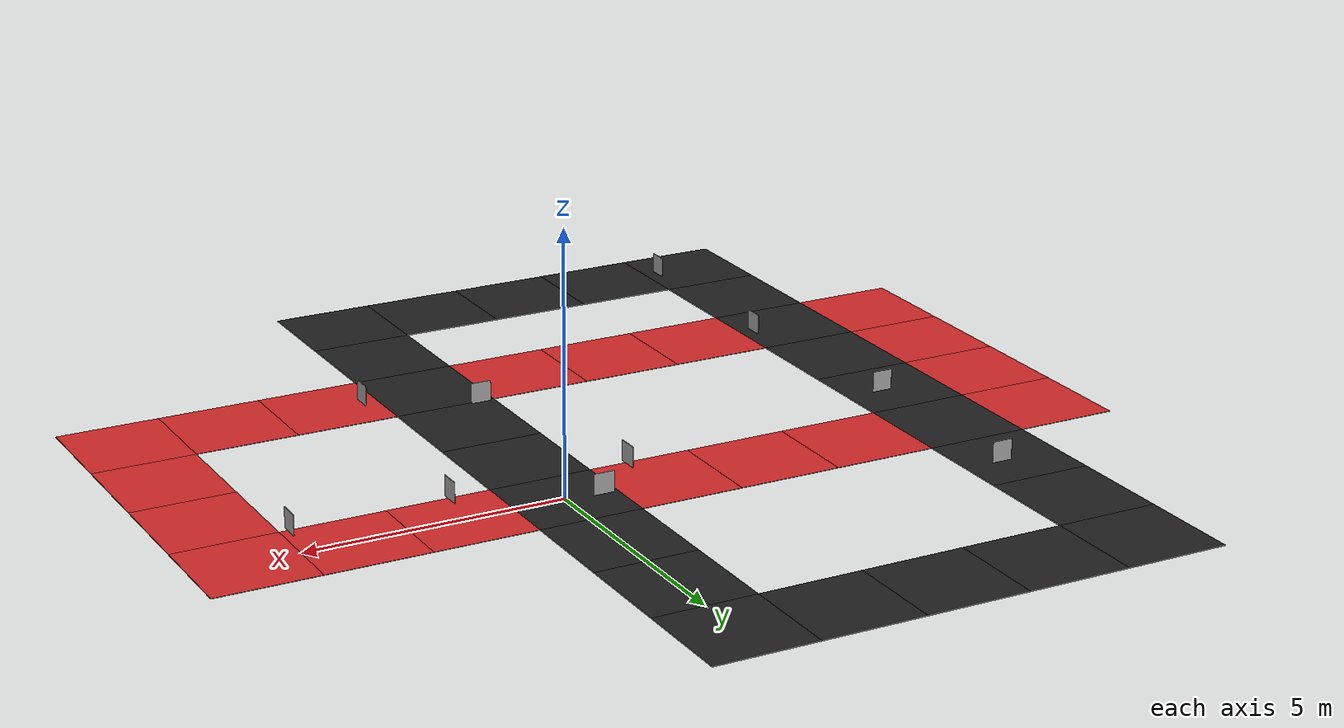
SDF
<sdf version="1.6">
 <world name="default">
  <light name="sun" type="directional">
   <pose>0 0 10 0 -0 0</pose>
   <diffuse>0.8 0.8 0.8 1</diffuse>
   <specular>0.2 0.2 0.2 1</specular>
   <attenuation>
    <range>1000</range>
    <constant>0.9</constant>
    <linear>0.01</linear>
    <quadratic>0.001</quadratic>
   </attenuation>
   <direction>-0.5 0.1 -0.9</direction>
  </light>
  <gravity>0 0 -9.8</gravity>
  <magnetic_field>6e-06 2.3e-05 -4.2e-05</magnetic_field>
  <atmosphere type="adiabatic"/>
  <physics name="default_physics" default="0" type="ode">
   <max_step_size>0.001</max_step_size>
   <real_time_factor>0.1</real_time_factor>
   <real_time_update_rate>400</real_time_update_rate>
  </physics>
  <scene><ambient>0.4 0.4 0.4 1</ambient><background>0.7 0.7 0.7 1</background><shadows>1</shadows></scene>
  <audio><device>default</device></audio>
  <spherical_coordinates>
   <surface_model>EARTH_WGS84</surface_model>
   <latitude_deg>0</latitude_deg>
   <longitude_deg>0</longitude_deg>
   <elevation>0</elevation>
   <heading_deg>0</heading_deg>
  </spherical_coordinates>
  <model name="Robo Project">
   <static>1</static>
   <link name="link">
    <collision name="collision_floor">
     <pose>-3.21 7.355 0 0 -0 0</pose>
     <geometry><box><size>200 200 0.01</size></box></geometry>
     <surface><friction><ode><mu>100</mu><mu2>50</mu2></ode></friction></surface>
    </collision>
    <visual name="visual_floor_1">
     <geometry><box><size>2 2 0.01</size></box></geometry>
     <material>
      <script>
       <uri>model://robo_project/materials/scripts</uri>
       <uri>model://robo_project/materials/textures</uri>
       <name>RoboProject/redBlackCross</name>
      </script>
     </material>
    </visual>
    <visual name="visual_floor_2">
     <pose>0 -2 0 0 -0 -1.5708</pose>
     <geometry><box><size>2 2 0.01</size></box></geometry>
     <material>
      <script>
       <uri>model://robo_project/materials/scripts</uri>
       <uri>model://robo_project/materials/textures</uri>
       <name>RoboProject/Blackstraight</name>
      </script>
     </material>
    </visual>
    <visual name="visual_floor_3">
     <pose>0 2 0 0 -0 -1.5708</pose>
     <geometry><box><size>2 2 0.01</size></box></geometry>
     <material>
      <script>
       <uri>model://robo_project/materials/scripts</uri>
       <uri>model://robo_project/materials/textures</uri>
       <name>RoboProject/Blackstraight</name>
      </script>
     </material>
    </visual>
    <visual name="visual_floor_4">
     <pose>2 0 0 0 -0 0</pose>
     <geometry><box><size>2 2 0.01</size></box></geometry>
     <material>
      <script>
       <uri>model://robo_project/materials/scripts</uri>
       <uri>model://robo_project/materials/textures</uri>
       <name>RoboProject/Redstraight</name>
      </script>
     </material>
    </visual>
    <visual name="visual_floor_5">
     <pose>-2 0 0 0 -0 0</pose>
     <geometry><box><size>2 2 0.01</size></box></geometry>
     <material>
      <script>
       <uri>model://robo_project/materials/scripts</uri>
       <uri>model://robo_project/materials/textures</uri>
       <name>RoboProject/Redstraight</name>
      </script>
     </material>
    </visual>
    <visual name="visual_floor_6">
     <pose>4 0 0 0 -0 0</pose>
     <geometry><box><size>2 2 0.01</size></box></geometry>
     <material>
      <script>
       <uri>model://robo_project/materials/scripts</uri>
       <uri>model://robo_project/materials/textures</uri>
       <name>RoboProject/Redstraight</name>
      </script>
     </material>
    </visual>
    <visual name="visual_floor_7">
     <pose>-4 0 0 0 -0 0</pose>
     <geometry><box><size>2 2 0.01</size></box></geometry>
     <material>
      <script>
       <uri>model://robo_project/materials/scripts</uri>
       <uri>model://robo_project/materials/textures</uri>
       <name>RoboProject/Redstraight</name>
      </script>
     </material>
    </visual>
    <visual name="visual_floor_8">
     <pose>-6 0 0 0 -0 0</pose>
     <geometry><box><size>2 2 0.01</size></box></geometry>
     <material>
      <script>
       <uri>model://robo_project/materials/scripts</uri>
       <uri>model://robo_project/materials/textures</uri>
       <name>RoboProject/Redstraight</name>
      </script>
     </material>
    </visual>
    <visual name="visual_floor_9">
     <pose>-8 0 0 0 -0 0</pose>
     <geometry><box><size>2 2 0.01</size></box></geometry>
     <material>
      <script>
       <uri>model://robo_project/materials/scripts</uri>
       <uri>model://robo_project/materials/textures</uri>
       <name>RoboProject/redBlackCross</name>
      </script>
     </material>
    </visual>
    <visual name="visual_floor_10">
     <pose>-8 2 0 0 -0 -1.5708</pose>
     <geometry><box><size>2 2 0.01</size></box></geometry>
     <material>
      <script>
       <uri>model://robo_project/materials/scripts</uri>
       <uri>model://robo_project/materials/textures</uri>
       <name>RoboProject/Blackstraight</name>
      </script>
     </material>
    </visual>
    <visual name="visual_floor_11">
     <pose>-8 -2 0 0 -0 -1.5708</pose>
     <geometry><box><size>2 2 0.01</size></box></geometry>
     <material>
      <script>
       <uri>model://robo_project/materials/scripts</uri>
       <uri>model://robo_project/materials/textures</uri>
       <name>RoboProject/Blackstraight</name>
      </script>
     </material>
    </visual>
    <visual name="visual_floor_12">
     <pose>-8 4 0 0 -0 -1.5708</pose>
     <geometry><box><size>2 2 0.01</size></box></geometry>
     <material>
      <script>
       <uri>model://robo_project/materials/scripts</uri>
       <uri>model://robo_project/materials/textures</uri>
       <name>RoboProject/Blackstraight</name>
      </script>
     </material>
    </visual>
    <visual name="visual_floor_13">
     <pose>-8 -4 0 0 -0 -1.5708</pose>
     <geometry><box><size>2 2 0.01</size></box></geometry>
     <material>
      <script>
       <uri>model://robo_project/materials/scripts</uri>
       <uri>model://robo_project/materials/textures</uri>
       <name>RoboProject/Blackstraight</name>
      </script>
     </material>
    </visual>
    <visual name="visual_floor_14">
     <pose>-10 0 0 0 -0 1.5708</pose>
     <geometry><box><size>2 2 0.01</size></box></geometry>
     <material>
      <script>
       <uri>model://robo_project/materials/scripts</uri>
       <uri>model://robo_project/materials/textures</uri>
       <name>RoboProject/Redeasyturn</name>
      </script>
     </material>
    </visual>
    <visual name="visual_floor_15">
     <pose>-10 -2 0 0 -0 1.5708</pose>
     <geometry><box><size>2 2 0.01</size></box></geometry>
     <material>
      <script>
       <uri>model://robo_project/materials/scripts</uri>
       <uri>model://robo_project/materials/textures</uri>
       <name>RoboProject/Redstraight</name>
      </script>
     </material>
    </visual>
    <visual name="visual_floor_16">
     <pose>-10 -4 0 0 -0 1.5708</pose>
     <geometry><box><size>2 2 0.01</size></box></geometry>
     <material>
      <script>
       <uri>model://robo_project/materials/scripts</uri>
       <uri>model://robo_project/materials/textures</uri>
       <name>RoboProject/Redstraight</name>
      </script>
     </material>
    </visual>
    <visual name="visual_floor_17">
     <pose>-10 -6 0 0 -0 -3.1416</pose>
     <geometry><box><size>2 2 0.01</size></box></geometry>
     <material>
      <script>
       <uri>model://robo_project/materials/scripts</uri>
       <uri>model://robo_project/materials/textures</uri>
       <name>RoboProject/Redeasyturn</name>
      </script>
     </material>
    </visual>
    <visual name="visual_floor_18">
     <pose>-8 -6 0 0 -0 0</pose>
     <geometry><box><size>2 2 0.01</size></box></geometry>
     <material>
      <script>
       <uri>model://robo_project/materials/scripts</uri>
       <uri>model://robo_project/materials/textures</uri>
       <name>RoboProject/redBlackCross</name>
      </script>
     </material>
    </visual>
    <visual name="visual_floor_19">
     <pose>-8 -8 0 0 -0 -1.5708</pose>
     <geometry><box><size>2 2 0.01</size></box></geometry>
     <material>
      <script>
       <uri>model://robo_project/materials/scripts</uri>
       <uri>model://robo_project/materials/textures</uri>
       <name>RoboProject/Blackstraight</name>
      </script>
     </material>
    </visual>
    <visual name="visual_floor_20">
     <pose>-8 -10 0 0 -0 -3.1416</pose>
     <geometry><box><size>2 2 0.01</size></box></geometry>
     <material>
      <script>
       <uri>model://robo_project/materials/scripts</uri>
       <uri>model://robo_project/materials/textures</uri>
       <name>RoboProject/Blackeasyturn</name>
      </script>
     </material>
    </visual>
    <visual name="visual_floor_21">
     <pose>-6 -10 0 0 -0 -3.1416</pose>
     <geometry><box><size>2 2 0.01</size></box></geometry>
     <material>
      <script>
       <uri>model://robo_project/materials/scripts</uri>
       <uri>model://robo_project/materials/textures</uri>
       <name>RoboProject/Blackstraight</name>
      </script>
     </material>
    </visual>
    <visual name="visual_floor_22">
     <pose>-4 -10 0 0 -0 -3.1416</pose>
     <geometry><box><size>2 2 0.01</size></box></geometry>
     <material>
      <script>
       <uri>model://robo_project/materials/scripts</uri>
       <uri>model://robo_project/materials/textures</uri>
       <name>RoboProject/Blackstraight</name>
      </script>
     </material>
    </visual>
    <visual name="visual_floor_23">
     <pose>0 -4 0 0 -0 -1.5708</pose>
     <geometry><box><size>2 2 0.01</size></box></geometry>
     <material>
      <script>
       <uri>model://robo_project/materials/scripts</uri>
       <uri>model://robo_project/materials/textures</uri>
       <name>RoboProject/Blackstraight</name>
      </script>
     </material>
    </visual>
    <visual name="visual_floor_24">
     <pose>0 -8 0 0 -0 -1.5708</pose>
     <geometry><box><size>2 2 0.01</size></box></geometry>
     <material>
      <script>
       <uri>model://robo_project/materials/scripts</uri>
       <uri>model://robo_project/materials/textures</uri>
       <name>RoboProject/Blackstraight</name>
      </script>
     </material>
    </visual>
    <visual name="visual_floor_25">
     <pose>0 -6 0 0 -0 0</pose>
     <geometry><box><size>2 2 0.01</size></box></geometry>
     <material>
      <script>
       <uri>model://robo_project/materials/scripts</uri>
       <uri>model://robo_project/materials/textures</uri>
       <name>RoboProject/redBlackCross</name>
      </script>
     </material>
    </visual>
    <visual name="visual_floor_27">
     <pose>-2 -6 0 0 -0 0</pose>
     <geometry><box><size>2 2 0.01</size></box></geometry>
     <material>
      <script>
       <uri>model://robo_project/materials/scripts</uri>
       <uri>model://robo_project/materials/textures</uri>
       <name>RoboProject/Redstraight</name>
      </script>
     </material>
    </visual>
    <visual name="visual_floor_28">
     <pose>-4 -6 0 0 -0 0</pose>
     <geometry><box><size>2 2 0.01</size></box></geometry>
     <material>
      <script>
       <uri>model://robo_project/materials/scripts</uri>
       <uri>model://robo_project/materials/textures</uri>
       <name>RoboProject/Redstraight</name>
      </script>
     </material>
    </visual>
    <visual name="visual_floor_29">
     <pose>-6 -6 0 0 -0 0</pose>
     <geometry><box><size>2 2 0.01</size></box></geometry>
     <material>
      <script>
       <uri>model://robo_project/materials/scripts</uri>
       <uri>model://robo_project/materials/textures</uri>
       <name>RoboProject/Redstraight</name>
      </script>
     </material>
    </visual>
    <visual name="visual_floor_26">
     <pose>-10 0 0 0 -0 1.5708</pose>
     <geometry><box><size>2 2 0.01</size></box></geometry>
     <material>
      <script>
       <uri>model://robo_project/materials/scripts</uri>
       <uri>model://robo_project/materials/textures</uri>
       <name>RoboProject/Redeasyturn</name>
      </script>
     </material>
    </visual>
    <visual name="visual_floor_30">
     <pose>0 -10 0 0 -0 -1.5708</pose>
     <geometry><box><size>2 2 0.01</size></box></geometry>
     <material>
      <script>
       <uri>model://robo_project/materials/scripts</uri>
       <uri>model://robo_project/materials/textures</uri>
       <name>RoboProject/Blackeasyturn</name>
      </script>
     </material>
    </visual>
    <visual name="visual_floor_31">
     <pose>-2 -10 0 0 -0 0</pose>
     <geometry><box><size>2 2 0.01</size></box></geometry>
     <material>
      <script>
       <uri>model://robo_project/materials/scripts</uri>
       <uri>model://robo_project/materials/textures</uri>
       <name>RoboProject/Blackstraight</name>
      </script>
     </material>
    </visual>
    <visual name="visual_floor_32">
     <pose>6 0 0 0 -0 0</pose>
     <geometry><box><size>2 2 0.01</size></box></geometry>
     <material>
      <script>
       <uri>model://robo_project/materials/scripts</uri>
       <uri>model://robo_project/materials/textures</uri>
       <name>RoboProject/Redeasyturn</name>
      </script>
     </material>
    </visual>
    <visual name="visual_floor_33">
     <pose>6 -6 0 0 -0 -1.5708</pose>
     <geometry><box><size>2 2 0.01</size></box></geometry>
     <material>
      <script>
       <uri>model://robo_project/materials/scripts</uri>
       <uri>model://robo_project/materials/textures</uri>
       <name>RoboProject/Redeasyturn</name>
      </script>
     </material>
    </visual>
    <visual name="visual_floor_34">
     <pose>6 -4 0 0 -0 1.5708</pose>
     <geometry><box><size>2 2 0.01</size></box></geometry>
     <material>
      <script>
       <uri>model://robo_project/materials/scripts</uri>
       <uri>model://robo_project/materials/textures</uri>
       <name>RoboProject/Redstraight</name>
      </script>
     </material>
    </visual>
    <visual name="visual_floor_36">
     <pose>4 -6 0 0 -0 0</pose>
     <geometry><box><size>2 2 0.01</size></box></geometry>
     <material>
      <script>
       <uri>model://robo_project/materials/scripts</uri>
       <uri>model://robo_project/materials/textures</uri>
       <name>RoboProject/Redstraight</name>
      </script>
     </material>
    </visual>
    <visual name="visual_floor_37">
     <pose>2 -6 0 0 -0 0</pose>
     <geometry><box><size>2 2 0.01</size></box></geometry>
     <material>
      <script>
       <uri>model://robo_project/materials/scripts</uri>
       <uri>model://robo_project/materials/textures</uri>
       <name>RoboProject/Redstraight</name>
      </script>
     </material>
    </visual>
    <visual name="visual_floor_38">
     <pose>0 4 0 0 -0 -1.5708</pose>
     <geometry><box><size>2 2 0.01</size></box></geometry>
     <material>
      <script>
       <uri>model://robo_project/materials/scripts</uri>
       <uri>model://robo_project/materials/textures</uri>
       <name>RoboProject/Blackstraight</name>
      </script>
     </material>
    </visual>
    <visual name="visual_floor_39">
     <pose>-2 6 0 0 -0 0</pose>
     <geometry><box><size>2 2 0.01</size></box></geometry>
     <material>
      <script>
       <uri>model://robo_project/materials/scripts</uri>
       <uri>model://robo_project/materials/textures</uri>
       <name>RoboProject/Blackstraight</name>
      </script>
     </material>
    </visual>
    <visual name="visual_floor_40">
     <pose>-4 6 0 0 -0 0</pose>
     <geometry><box><size>2 2 0.01</size></box></geometry>
     <material>
      <script>
       <uri>model://robo_project/materials/scripts</uri>
       <uri>model://robo_project/materials/textures</uri>
       <name>RoboProject/Blackstraight</name>
      </script>
     </material>
    </visual>
    <visual name="visual_floor_41">
     <pose>-6 6 0 0 -0 0</pose>
     <geometry><box><size>2 2 0.01</size></box></geometry>
     <material>
      <script>
       <uri>model://robo_project/materials/scripts</uri>
       <uri>model://robo_project/materials/textures</uri>
       <name>RoboProject/Blackstraight</name>
      </script>
     </material>
    </visual>
    <visual name="visual_floor_42">
     <pose>-8 6 0 0 -0 1.5708</pose>
     <geometry><box><size>2 2 0.01</size></box></geometry>
     <material>
      <script>
       <uri>model://robo_project/materials/scripts</uri>
       <uri>model://robo_project/materials/textures</uri>
       <name>RoboProject/Blackeasyturn</name>
      </script>
     </material>
    </visual>
    <visual name="visual_floor_43">
     <pose>0 6 0 0 -0 0</pose>
     <geometry><box><size>2 2 0.01</size></box></geometry>
     <material>
      <script>
       <uri>model://robo_project/materials/scripts</uri>
       <uri>model://robo_project/materials/textures</uri>
       <name>RoboProject/Blackeasyturn</name>
      </script>
     </material>
    </visual>
    <visual name="visual_floor_44">
     <pose>6 -2 0 0 -0 -1.5708</pose>
     <geometry><box><size>2 2 0.01</size></box></geometry>
     <material>
      <script>
       <uri>model://robo_project/materials/scripts</uri>
       <uri>model://robo_project/materials/textures</uri>
       <name>RoboProject/Redstraight</name>
      </script>
     </material>
    </visual>
    <visual name="visual_sign_1">
     <pose>5 -0.5 0.4 0 -1.5708 0</pose>
     <geometry><box><size>0.4 0.4 0.01</size></box></geometry>
     <material>
      <script>
       <uri>model://robo_project/materials/scripts</uri>
       <uri>model://robo_project/materials/textures</uri>
       <name>RoboProject/SpeedLimit</name>
      </script>
     </material>
    </visual>
    <visual name="visual_sign_2">
     <pose>2 -0.5 0.4 0 1.5708 0</pose>
     <geometry><box><size>0.4 0.4 0.01</size></box></geometry>
     <material>
      <script>
       <uri>model://robo_project/materials/scripts</uri>
       <uri>model://robo_project/materials/textures</uri>
       <name>RoboProject/NoLimit</name>
      </script>
     </material>
    </visual>
    <visual name="visual_sign_6">
     <pose>1.5 -5.5 0.4 0 -1.5708 3.1415</pose>
     <geometry><box><size>0.4 0.4 0.01</size></box></geometry>
     <material>
      <script>
       <uri>model://robo_project/materials/scripts</uri>
       <uri>model://robo_project/materials/textures</uri>
       <name>RoboProject/giveWay</name>
      </script>
     </material>
    </visual>
    <visual name="visual_sign_4">
     <pose>-1.5 -0.5 0.4 0 -1.5708 0</pose>
     <geometry><box><size>0.4 0.4 0.01</size></box></geometry>
     <material>
      <script>
       <uri>model://robo_project/materials/scripts</uri>
       <uri>model://robo_project/materials/textures</uri>
       <name>RoboProject/giveWay</name>
      </script>
     </material>
    </visual>
    <visual name="visual_sign_10">
     <pose>-7 -9.5 0.4 0 -1.5708 3.1415</pose>
     <geometry><box><size>0.4 0.4 0.01</size></box></geometry>
     <material>
      <script>
       <uri>model://robo_project/materials/scripts</uri>
       <uri>model://robo_project/materials/textures</uri>
       <name>RoboProject/giveWay</name>
      </script>
     </material>
    </visual>
    <visual name="visual_sign_11">
     <pose>-0.5 +0.5 0.4 0 1.5708 -1.5708</pose>
     <geometry><box><size>0.4 0.4 0.01</size></box></geometry>
     <material>
      <script>
       <uri>model://robo_project/materials/scripts</uri>
       <uri>model://robo_project/materials/textures</uri>
       <name>RoboProject/SpeedLimit</name>
      </script>
     </material>
    </visual>
    <visual name="visual_sign_12">
     <pose>-0.5 -4.5 0.4 0 1.5708 -1.5708</pose>
     <geometry><box><size>0.4 0.4 0.01</size></box></geometry>
     <material>
      <script>
       <uri>model://robo_project/materials/scripts</uri>
       <uri>model://robo_project/materials/textures</uri>
       <name>RoboProject/SpeedLimit</name>
      </script>
     </material>
    </visual>
    <visual name="visual_sign_13">
     <pose>-7 -5.5 0.4 0 -1.5708 3.1415</pose>
     <geometry><box><size>0.4 0.4 0.01</size></box></geometry>
     <material>
      <script>
       <uri>model://robo_project/materials/scripts</uri>
       <uri>model://robo_project/materials/textures</uri>
       <name>RoboProject/SpeedLimit</name>
      </script>
     </material>
    </visual>
    <visual name="visual_sign_14">
     <pose>-7.5 -1.5 0.4 0 1.5708 1.5708</pose>
     <geometry><box><size>0.4 0.4 0.01</size></box></geometry>
     <material>
      <script>
       <uri>model://robo_project/materials/scripts</uri>
       <uri>model://robo_project/materials/textures</uri>
       <name>RoboProject/giveWay</name>
      </script>
     </material>
    </visual>
    <visual name="visual_sign_15">
     <pose>-7.5 2.5 0.4 0 1.5708 1.5708</pose>
     <geometry><box><size>0.4 0.4 0.01</size></box></geometry>
     <material>
      <script>
       <uri>model://robo_project/materials/scripts</uri>
       <uri>model://robo_project/materials/textures</uri>
       <name>RoboProject/NoLimit</name>
      </script>
     </material>
    </visual>
   </link>
  </model>
 </world>
</sdf>
